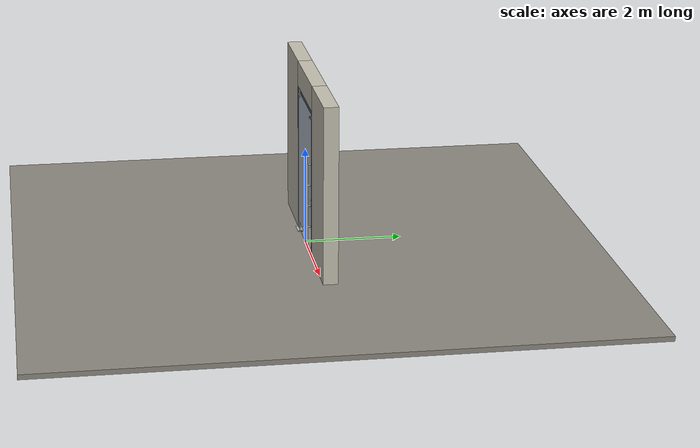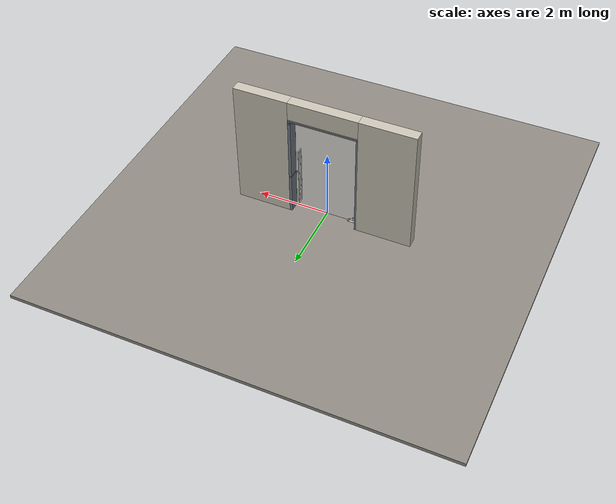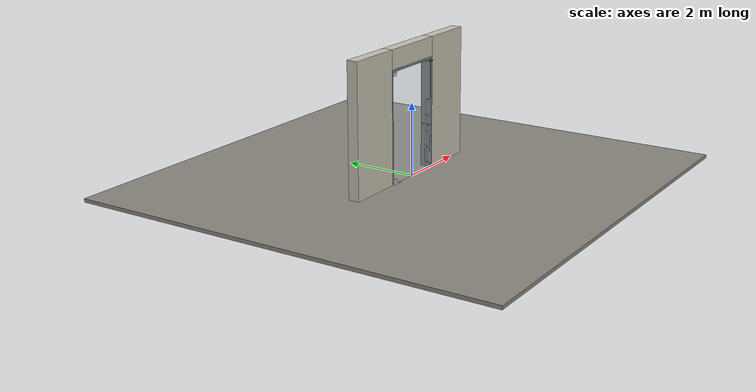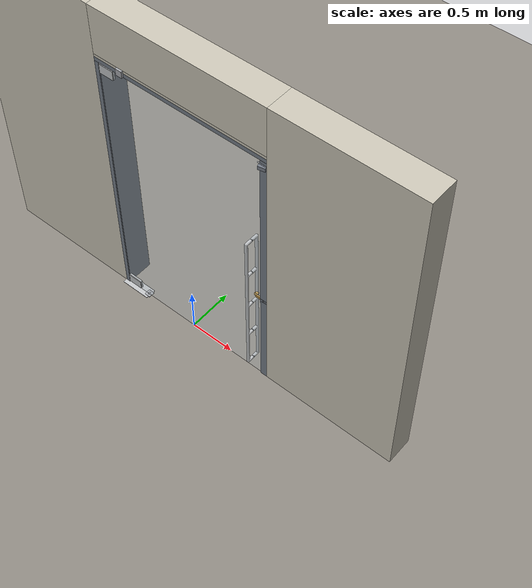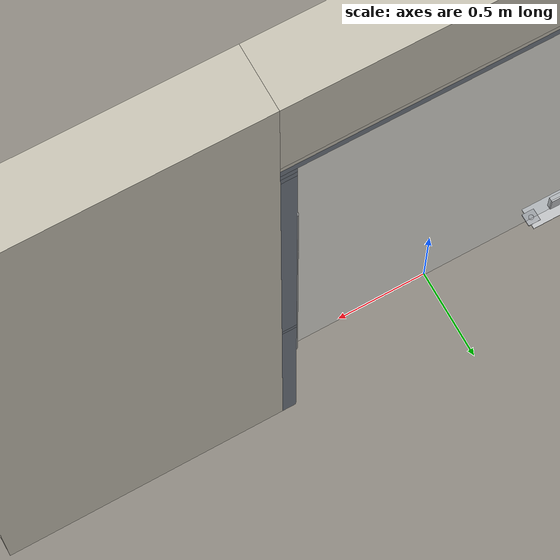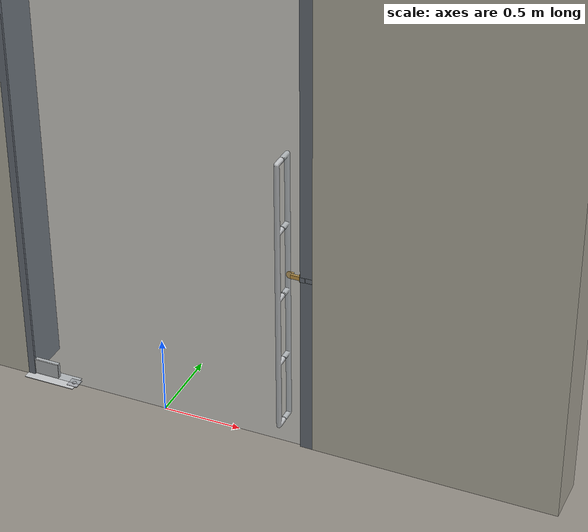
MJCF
<?xml version="1.0" ?>
<mujoco model="db0817_pivot_full">
  <compiler angle="radian" meshdir="../../hardware" texturedir="../../textures" autolimits="true" inertiafromgeom="false"/>
  <option timestep="0.002" integrator="implicitfast" cone="elliptic" impratio="10" noslip_iterations="3">
    <flag multiccd="enable"/>
  </option>
  <size memory="16M"/>
  <default>
    <geom condim="4" solref="0.005 1" solimp="0.95 0.99 0.001"/>
    <joint solreflimit="0.005 1" solimplimit="0.95 0.99 0.001"/>
    <tendon solreflimit="0.005 1"/>
    <equality solref="0.002 1"/>
  </default>
  <visual>
    <headlight ambient="0.4 0.4 0.4" diffuse="0.7 0.7 0.7" specular="0.2 0.2 0.2"/>
    <quality shadowsize="4096"/>
    <map znear="0.01" zfar="60"/>
  </visual>
  <asset>
    <mesh name="pull_897e207f65" file="pull_897e207f65.obj"/>
    <mesh name="thumbturn_eb5c9899a3" file="thumbturn_eb5c9899a3.obj"/>
    <material name="mat_floor" rgba="0.55 0.53 0.5 1" specular="0.2" shininess="0.15" reflectance="0"/>
    <material name="mat_wall" rgba="0.78 0.76 0.7 1" specular="0.2" shininess="0.1" reflectance="0"/>
    <material name="mat_leaf" rgba="0.85 0.92 0.95 0.25" specular="0.2" shininess="0.95" reflectance="0.1"/>
    <material name="mat_glass_leaf" rgba="0.85 0.92 0.95 0.25" specular="0.2" shininess="0.95" reflectance="0.1"/>
    <material name="mat_patch" rgba="0.75 0.76 0.77 1" specular="0.8" shininess="0.65" reflectance="0.4"/>
    <material name="mat_hinge" rgba="0.65 0.66 0.68 1" specular="0.74" shininess="0.5" reflectance="0.36"/>
    <material name="mat_op_stainless" rgba="0.75 0.76 0.77 1" specular="0.8" shininess="0.65" reflectance="0.4"/>
    <material name="mat_bolt" rgba="0.75 0.76 0.77 1" specular="0.8" shininess="0.65" reflectance="0.4"/>
    <material name="mat_deadbolt" rgba="0.85 0.66 0.3 1" specular="0.8" shininess="0.75" reflectance="0.4"/>
    <material name="mat_frame" rgba="0.45 0.48 0.52 1" specular="0.32" shininess="0.6" reflectance="0.08"/>
    <material name="mat_closer" rgba="0.75 0.76 0.77 1" specular="0.8" shininess="0.65" reflectance="0.4"/>
    <texture name="skybox" type="skybox" builtin="gradient" rgb1="0.6 0.7 0.85" rgb2="0.9 0.92 0.95" width="256" height="256"/>
  </asset>
  <worldbody>
    <light name="sun" pos="1.5 -2.5 4" dir="-0.3 0.5 -0.8" directional="true" diffuse="0.8 0.8 0.8" specular="0.3 0.3 0.3" castshadow="true"/>
    <light name="fill" pos="-1.5 2.5 3" dir="0.3 -0.5 -0.7" directional="true" diffuse="0.35 0.35 0.4" castshadow="false"/>
    <camera name="robot_view" pos="0 -3.31175 2.47165" xyaxes="1 0 0 0 0.26963 0.962964" fovy="52"/>
    <camera name="far_view" pos="0 3.58575 2.47165" xyaxes="-1 0 0 0 -0.26963 0.962964" fovy="52"/>
    <camera name="iso" pos="2.62105 -2.75995 3.02345" xyaxes="0.741536 0.670913 0 -0.242917 0.268487 0.932151" fovy="46"/>
    <camera name="detail_handle" pos="0.975 -0.871 1.33" xyaxes="0.97561 0.219512 0 -0.070934 0.315262 0.94635" fovy="38"/>
    <geom name="floor" type="box" size="6 6 0.05" pos="0 0 -0.05" material="mat_floor" group="0" contype="1" conaffinity="1" friction="0.8 0.005 0.0001" density="2400"/>
    <geom name="wall_left" type="box" size="0.7745 0.15 1.806" pos="-1.7255 0.137 1.806" material="mat_wall" group="0" contype="1" conaffinity="1" friction="0.6 0.005 0.0001" density="800"/>
    <geom name="wall_right" type="box" size="0.7595 0.15 1.806" pos="1.7405 0.137 1.806" material="mat_wall" group="0" contype="1" conaffinity="1" friction="0.6 0.005 0.0001" density="800"/>
    <geom name="wall_header" type="box" size="0.966 0.15 0.2625" pos="0.015 0.137 3.3495" material="mat_wall" group="0" contype="1" conaffinity="1" friction="0.6 0.005 0.0001" density="800"/>
    <geom name="pivot_bottom_socket" type="box" size="0.035 0.035 0.008" pos="-0.636 0 -0.002" material="mat_hinge" group="1" contype="0" conaffinity="0" density="7850"/>
    <geom name="pivot_top_bracket" type="box" size="0.035 0.035 0.0355" pos="-0.636 0 3.0515" material="mat_hinge" group="1" contype="0" conaffinity="0" density="7850"/>
    <geom name="leaf_deadbolt_strike_b" type="box" size="0.0155 0.003 0.0005" pos="0.9055 0 1.1715" quat="-0.5 -0.5 0.5 0.5" material="mat_deadbolt" group="1" contype="0" conaffinity="0" density="7800"/>
    <geom name="leaf_deadbolt_strike_l" type="box" size="0.003 0.0155 0.0005" pos="0.9055 0.0125 1.19" quat="-0.5 -0.5 0.5 0.5" material="mat_deadbolt" group="1" contype="0" conaffinity="0" density="7800"/>
    <geom name="leaf_deadbolt_strike_t" type="box" size="0.0155 0.003 0.0005" pos="0.9055 0 1.2085" quat="-0.5 -0.5 0.5 0.5" material="mat_deadbolt" group="1" contype="0" conaffinity="0" density="7800"/>
    <geom name="leaf_deadbolt_strike_r" type="box" size="0.003 0.0155 0.0005" pos="0.9055 -0.0125 1.19" quat="-0.5 -0.5 0.5 0.5" material="mat_deadbolt" group="1" contype="0" conaffinity="0" density="7800"/>
    <geom name="jamb_hinge" type="box" size="0.0225 0.15 1.506" pos="-0.9285 0.137 1.506" material="mat_frame" group="0" contype="1" conaffinity="1" friction="0.6 0.005 0.0001" density="300"/>
    <geom name="strike_1190_wall_n" type="box" size="0.0375 0.13875 0.0155" pos="0.9435 0.14825 1.19" material="mat_frame" group="0" contype="1" conaffinity="1" friction="0.6 0.005 0.0001" density="300"/>
    <geom name="strike_1190_wall_p" type="box" size="0.0157 0.003 0.0155" pos="0.9217 -0.0125 1.19" material="mat_frame" group="0" contype="1" conaffinity="1" friction="0.6 0.005 0.0001" density="300"/>
    <geom name="strike_1190_back" type="box" size="0.0228 0.0095 0.0155" pos="0.9582 0 1.19" material="mat_frame" group="0" contype="1" conaffinity="1" friction="0.6 0.005 0.0001" density="300"/>
    <geom name="strike_2958_wall_n" type="box" size="0.0375 0.13975 0.019" pos="0.9435 0.14725 2.958" material="mat_frame" group="0" contype="1" conaffinity="1" friction="0.6 0.005 0.0001" density="300"/>
    <geom name="strike_2958_wall_p" type="box" size="0.0375 0.008 0.019" pos="0.9435 -0.0155 2.958" material="mat_frame" group="0" contype="1" conaffinity="1" friction="0.6 0.005 0.0001" density="300"/>
    <geom name="strike_2958_ramp" type="box" size="0.0375 0.015403 0.019" pos="0.946019 -0.029979 2.958" quat="0.993439 0 0 0.114365" material="mat_frame" group="0" contype="1" conaffinity="1" friction="0.12 0.005 0.0001" density="300"/>
    <geom name="strike_2958_ramp_n" type="box" size="0.0375 0.015403 0.019" pos="0.946019 0.017979 2.958" quat="0.993439 0 0 -0.114365" material="mat_frame" group="0" contype="1" conaffinity="1" friction="0.12 0.005 0.0001" density="300"/>
    <geom name="strike_2958_back" type="box" size="0.0325 0.0075 0.019" pos="0.9485 0 2.958" material="mat_frame" group="0" contype="1" conaffinity="1" friction="0.6 0.005 0.0001" density="300"/>
    <geom name="jamb_strike_0" type="box" size="0.0375 0.15 0.58725" pos="0.9435 0.137 0.58725" material="mat_frame" group="0" contype="1" conaffinity="1" friction="0.6 0.005 0.0001" density="300"/>
    <geom name="jamb_strike_1" type="box" size="0.0375 0.15 0.86675" pos="0.9435 0.137 2.07225" material="mat_frame" group="0" contype="1" conaffinity="1" friction="0.6 0.005 0.0001" density="300"/>
    <geom name="jamb_strike_2" type="box" size="0.0375 0.15 0.0175" pos="0.9435 0.137 2.9945" material="mat_frame" group="0" contype="1" conaffinity="1" friction="0.6 0.005 0.0001" density="300"/>
    <geom name="jamb_head" type="box" size="0.966 0.15 0.0225" pos="0.015 0.137 3.0345" material="mat_frame" group="0" contype="1" conaffinity="1" friction="0.6 0.005 0.0001" density="300"/>
    <geom name="head_stud" type="box" size="0.966 0.15 0.015" pos="0.015 0.137 3.072" material="mat_wall" group="0" contype="1" conaffinity="1" friction="0.6 0.005 0.0001" density="500"/>
    <geom name="floor_spring_cover" type="box" size="0.17 0.06 0.002" pos="-0.786 0 0.002" material="mat_closer" group="1" contype="0" conaffinity="0" density="7900"/>
    <site name="approach_point" pos="0 -1.5 0" quat="1 0 0 0" size="0.05" rgba="0.2 0.9 0.2 0.5" group="4"/>
    <site name="goal_point" pos="0 1.5 0" quat="1 0 0 0" size="0.05" rgba="0.2 0.9 0.2 0.5" group="4"/>
    <site name="door_plane_center" pos="0 0 1.506" quat="1 0 0 0" size="0.02" rgba="0.2 0.9 0.2 0.5" group="4"/>
    <body name="leaf" pos="-0.906 0 0">
      <inertial pos="1.463718 0 1.186021" mass="170.061931" quat="0.425609 0.425609 -0.564674 0.564674" diaginertia="33.290966889 82.346712328 114.477804933"/>
      <joint name="leaf_hinge" type="hinge" axis="0 0 -1" pos="0.27 0 0" limited="true" range="0 1.570796" damping="13.6876" frictionloss="2.379631" stiffness="50.986878" springref="-2.013459" armature="0.02"/>
      <geom name="leaf_glass" type="box" size="0.9 0.006 1.5" pos="0.906 0 1.508" material="mat_glass_leaf" group="0" contype="1" conaffinity="1" friction="0.4 0.005 0.0001" density="1"/>
      <geom name="leaf_patch_bot" type="box" size="0.08 0.014 0.05" pos="0.086 0 0.068" material="mat_patch" group="1" contype="0" conaffinity="0" density="1"/>
      <geom name="leaf_patch_top" type="box" size="0.08 0.014 0.05" pos="0.086 0 2.948" material="mat_patch" group="1" contype="0" conaffinity="0" density="1"/>
      <geom name="pivot_bottom" type="cylinder" size="0.014 0.004" pos="0.27 0 0.003" material="mat_hinge" group="1" contype="0" conaffinity="0" density="7850"/>
      <geom name="pivot_top" type="cylinder" size="0.014 0.004" pos="0.27 0 3.012" material="mat_hinge" group="1" contype="0" conaffinity="0" density="7850"/>
      <geom name="leaf_pull_n" type="mesh" mesh="pull_897e207f65" pos="1.701 -0.006 1.05" quat="0.707107 0.707107 0 0" material="mat_op_stainless" group="1" contype="0" conaffinity="0" density="3000"/>
      <geom name="leaf_pull_col_n" type="capsule" size="0.016 0.88" pos="1.701 -0.071 1.05" material="mat_op_stainless" group="3" contype="1" conaffinity="1" rgba="0.8 0.3 0.3 0.25" friction="0.7 0.01 0.0001" density="3000"/>
      <geom name="leaf_pull_p" type="mesh" mesh="pull_897e207f65" pos="1.701 0.006 1.05" quat="-0.707107 0.707107 0 0" material="mat_op_stainless" group="1" contype="0" conaffinity="0" density="3000"/>
      <geom name="leaf_pull_col_p" type="capsule" size="0.016 0.88" pos="1.701 0.071 1.05" material="mat_op_stainless" group="3" contype="1" conaffinity="1" rgba="0.8 0.3 0.3 0.25" friction="0.7 0.01 0.0001" density="3000"/>
      <geom name="leaf_mag_catch_faceplate" type="box" size="0.0006 0.004 0.029" pos="1.8054 0 2.958" material="mat_bolt" group="1" contype="0" conaffinity="0" density="8500"/>
      <geom name="leaf_deadbolt_faceplate" type="box" size="0.0006 0.004 0.0245" pos="1.8054 0 1.19" material="mat_deadbolt" group="1" contype="0" conaffinity="0" density="8500"/>
      <site name="leaf_pull_grip_n" pos="1.701 -0.071 1.05" quat="1 0 0 0" size="0.012" rgba="0.2 0.9 0.2 0.5" group="4"/>
      <site name="leaf_pull_grip_p" pos="1.701 0.071 1.05" quat="1 0 0 0" size="0.012" rgba="0.2 0.9 0.2 0.5" group="4"/>
      <site name="leaf_edge_mid" pos="1.806 0 1.5" quat="1 0 0 0" size="0.02" rgba="0.2 0.9 0.2 0.5" group="4"/>
      <body name="leaf_mag_catch" pos="1.806 0 2.958">
        <inertial pos="-0.012 0 0" mass="0.030762" quat="0 0 0.707107 0.707107" diaginertia="0.000000526 0.000002949 0.000002949"/>
        <joint name="leaf_mag_catch_slide" type="slide" axis="-1 0 0" limited="true" range="0 0.006" damping="2" frictionloss="0.3" stiffness="5833.333333" springref="-0.006" armature="0.1"/>
        <geom name="leaf_mag_catch_capsule" type="capsule" size="0.006 0.012" pos="-0.012 0 0" quat="0.707107 0 0.707107 0" material="mat_bolt" group="0" contype="1" conaffinity="1" friction="0.2 0.005 0.0001" density="8500"/>
      </body>
      <body name="leaf_deadbolt" pos="1.806 0 1.19">
        <inertial pos="-0.0277 0 0" mass="0.18836" quat="0 0 0.707107 0.707107" diaginertia="0.000013829 0.000052194 0.000057986"/>
        <joint name="leaf_deadbolt_slide" type="slide" axis="-1 0 0" limited="true" range="0 0.0254" damping="5" frictionloss="1.5" armature="0.1" ref="0.0254"/>
        <geom name="leaf_deadbolt_box" type="box" size="0.0277 0.008 0.0125" pos="-0.0277 0 0" material="mat_deadbolt" group="0" contype="1" conaffinity="1" friction="0.3 0.005 0.0001" density="8500"/>
      </body>
      <body name="leaf_deadbolt_thumbturn" pos="1.741 0.006 1.19">
        <inertial pos="0 0.012928 0" mass="0.178946" quat="0.707107 -0.000001 -0.000001 0.707107" diaginertia="0.000026045 0.000026215 0.000032438"/>
        <joint name="leaf_deadbolt_thumbturn_hinge" type="hinge" axis="0 -1 0" limited="true" range="0 1.5708" damping="0.05" frictionloss="0.3" armature="0.005" ref="1.5708"/>
        <geom name="leaf_deadbolt_thumbturn_mesh" type="mesh" mesh="thumbturn_eb5c9899a3" pos="0 0 0" quat="-0.499999 0.499999 0.500001 0.500001" material="mat_deadbolt" group="0" contype="1" conaffinity="1" friction="0.6 0.005 0.0001" density="7100"/>
        <geom name="leaf_deadbolt_thumbturn_col" type="box" size="0.006 0.012 0.016" pos="0 0.02 0" quat="0.707105 0 -0.707108 0" material="mat_deadbolt" group="3" contype="1" conaffinity="1" rgba="0.8 0.3 0.3 0.25" friction="0.6 0.005 0.0001" density="7100"/>
      </body>
    </body>
  </worldbody>
  <equality>
    <joint name="leaf_deadbolt_couple" joint1="leaf_deadbolt_slide" joint2="leaf_deadbolt_thumbturn_hinge" polycoef="0 0.01617 0 0 0" active="true"/>
  </equality>
  <contact>
    <exclude body1="leaf_deadbolt" body2="leaf_deadbolt_thumbturn"/>
  </contact>
  <sensor>
    <jointpos name="leaf_hinge_pos" joint="leaf_hinge"/>
    <jointvel name="leaf_hinge_vel" joint="leaf_hinge"/>
    <jointpos name="leaf_mag_catch_slide_pos" joint="leaf_mag_catch_slide"/>
    <jointvel name="leaf_mag_catch_slide_vel" joint="leaf_mag_catch_slide"/>
    <jointpos name="leaf_deadbolt_slide_pos" joint="leaf_deadbolt_slide"/>
    <jointvel name="leaf_deadbolt_slide_vel" joint="leaf_deadbolt_slide"/>
    <jointpos name="leaf_deadbolt_thumbturn_hinge_pos" joint="leaf_deadbolt_thumbturn_hinge"/>
    <jointvel name="leaf_deadbolt_thumbturn_hinge_vel" joint="leaf_deadbolt_thumbturn_hinge"/>
  </sensor>
</mujoco>
